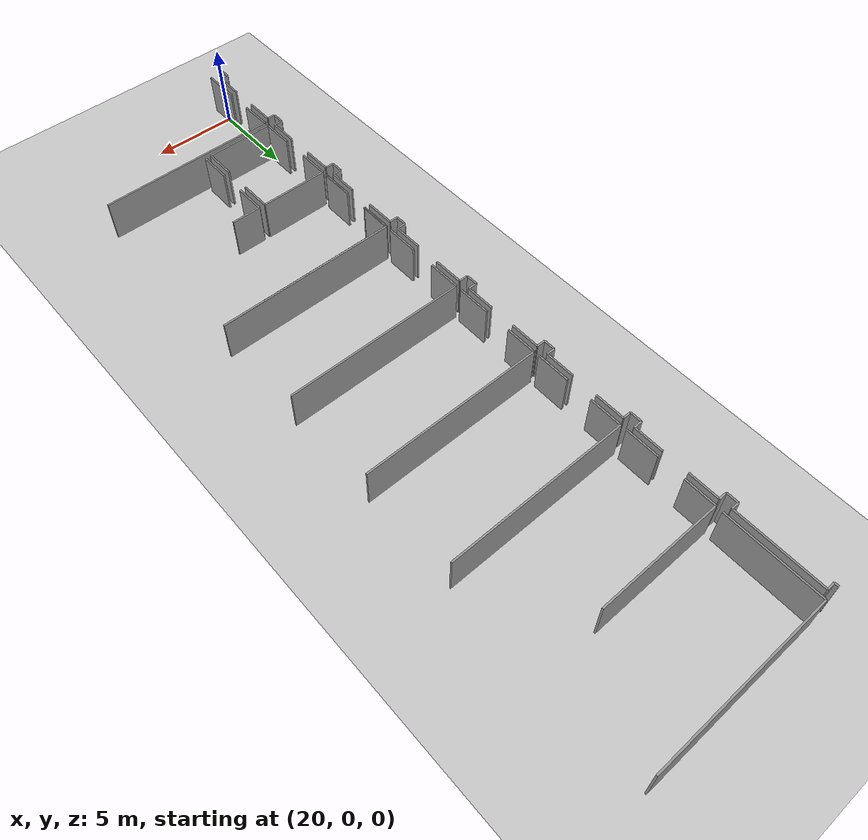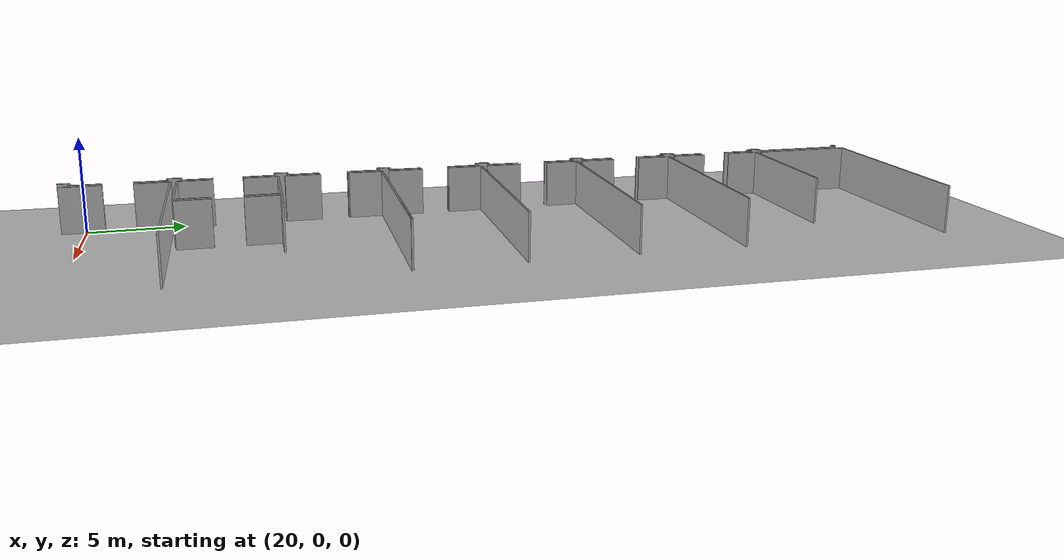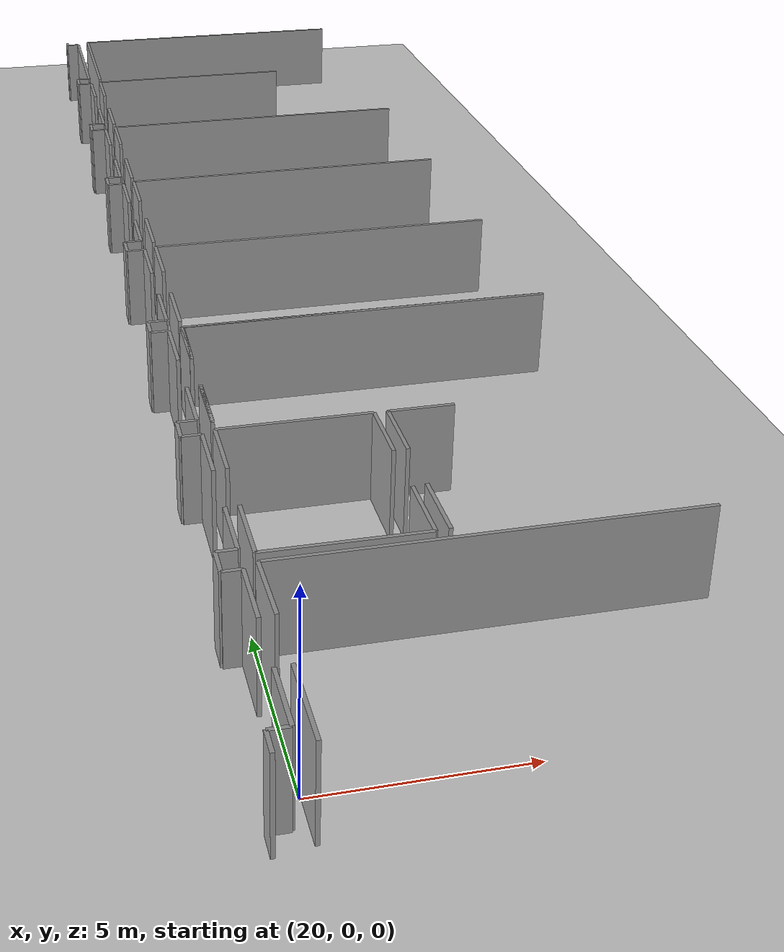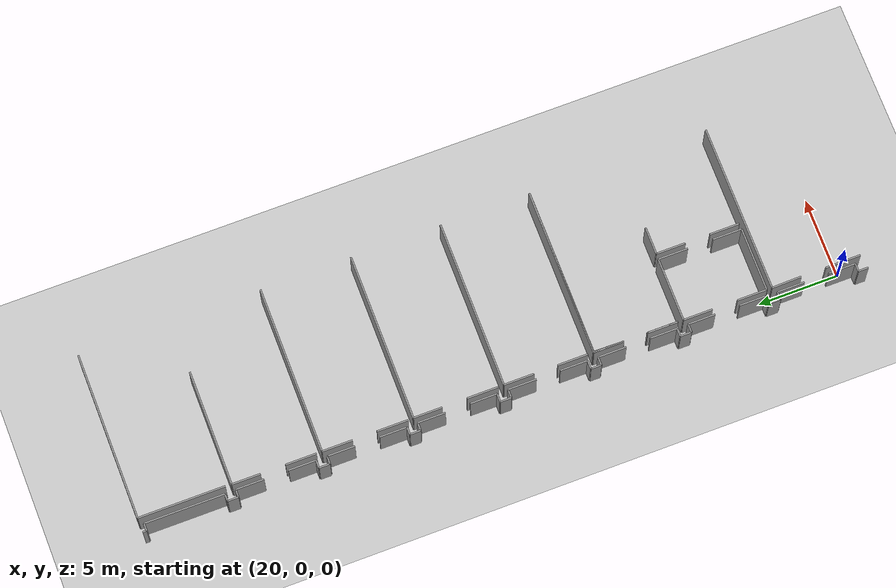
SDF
<sdf version="1.6">
 <world name="default">
  <model name="ground_plane">
   <static>1</static>
   <link name="link">
    <collision name="collision">
     <geometry><plane><normal>0 0 1</normal><size>100 100</size></plane></geometry>
     <surface><friction><ode><mu>100</mu><mu2>50</mu2></ode></friction></surface>
    </collision>
    <visual name="visual">
     <cast_shadows>0</cast_shadows>
     <geometry><plane><normal>0 0 1</normal><size>100 100</size></plane></geometry>
     <material>
      <script><uri>file://media/materials/scripts/gazebo.material</uri><name>Gazebo/Grey</name></script>
     </material>
    </visual>
   </link>
  </model>
  <model name="50015847">
   <static>1</static>
   <link name="Wall_366">
    <collision name="Wall_366_Collision">
     <geometry><box><size>0.239233233335 0.1 2.5</size></box></geometry>
     <pose>0.119616616668 0 1.25 0 0 0</pose>
    </collision>
    <visual name="Wall_366_Visual">
     <pose>0.119616616668 0 1.25 0 0 0</pose>
     <geometry><box><size>0.239233233335 0.1 2.5</size></box></geometry>
     <material>
      <script><uri>file://media/materials/scripts/gazebo.material</uri><name>Gazebo/Grey</name></script>
      <ambient>1 1 1 1</ambient>
     </material>
    </visual>
    <pose>151.54802461 -0.245080591854 0 0 0 -1.57079632679</pose>
   </link>
   <link name="Wall_367">
    <collision name="Wall_367_Collision">
     <geometry><box><size>0.455077032593 0.1 2.5</size></box></geometry>
     <pose>0.227538516296 0 1.25 0 0 0</pose>
    </collision>
    <visual name="Wall_367_Visual">
     <pose>0.227538516296 0 1.25 0 0 0</pose>
     <geometry><box><size>0.455077032593 0.1 2.5</size></box></geometry>
     <material>
      <script><uri>file://media/materials/scripts/gazebo.material</uri><name>Gazebo/Grey</name></script>
      <ambient>1 1 1 1</ambient>
     </material>
    </visual>
    <pose>151.54802461 -0.484313825189 0 0 0 0.0</pose>
   </link>
   <link name="Wall_368">
    <collision name="Wall_368_Collision">
     <geometry><box><size>4.94330604566 0.1 2.5</size></box></geometry>
     <pose>2.47165302283 0 1.25 0 0 0</pose>
    </collision>
    <visual name="Wall_368_Visual">
     <pose>2.47165302283 0 1.25 0 0 0</pose>
     <geometry><box><size>4.94330604566 0.1 2.5</size></box></geometry>
     <material>
      <script><uri>file://media/materials/scripts/gazebo.material</uri><name>Gazebo/Grey</name></script>
      <ambient>1 1 1 1</ambient>
     </material>
    </visual>
    <pose>152.003101642 -0.484313825189 0 0 0 -1.57079632679</pose>
   </link>
   <link name="Wall_369">
    <collision name="Wall_369_Collision">
     <geometry><box><size>0.447958509178 0.1 2.5</size></box></geometry>
     <pose>0.223979254589 0 1.25 0 0 0</pose>
    </collision>
    <visual name="Wall_369_Visual">
     <pose>0.223979254589 0 1.25 0 0 0</pose>
     <geometry><box><size>0.447958509178 0.1 2.5</size></box></geometry>
     <material>
      <script><uri>file://media/materials/scripts/gazebo.material</uri><name>Gazebo/Grey</name></script>
      <ambient>1 1 1 1</ambient>
     </material>
    </visual>
    <pose>152.003101642 -5.42761987085 0 0 0 3.14159265359</pose>
   </link>
   <link name="Wall_370">
    <collision name="Wall_370_Collision">
     <geometry><box><size>0.664819240352 0.1 2.5</size></box></geometry>
     <pose>0.332409620176 0 1.25 0 0 0</pose>
    </collision>
    <visual name="Wall_370_Visual">
     <pose>0.332409620176 0 1.25 0 0 0</pose>
     <geometry><box><size>0.664819240352 0.1 2.5</size></box></geometry>
     <material>
      <script><uri>file://media/materials/scripts/gazebo.material</uri><name>Gazebo/Grey</name></script>
      <ambient>1 1 1 1</ambient>
     </material>
    </visual>
    <pose>151.555143133 -5.42761987085 0 0 0 -1.57079632679</pose>
   </link>
   <link name="Wall_371">
    <collision name="Wall_371_Collision">
     <geometry><box><size>0.476941068795 0.1 2.5</size></box></geometry>
     <pose>0.238470534398 0 1.25 0 0 0</pose>
    </collision>
    <visual name="Wall_371_Visual">
     <pose>0.238470534398 0 1.25 0 0 0</pose>
     <geometry><box><size>0.476941068795 0.1 2.5</size></box></geometry>
     <material>
      <script><uri>file://media/materials/scripts/gazebo.material</uri><name>Gazebo/Grey</name></script>
      <ambient>1 1 1 1</ambient>
     </material>
    </visual>
    <pose>151.555143133 -6.0924391112 0 0 0 0.0</pose>
   </link>
   <link name="Wall_372">
    <collision name="Wall_372_Collision">
     <geometry><box><size>1.73742817918 0.1 2.5</size></box></geometry>
     <pose>0.868714089592 0 1.25 0 0 0</pose>
    </collision>
    <visual name="Wall_372_Visual">
     <pose>0.868714089592 0 1.25 0 0 0</pose>
     <geometry><box><size>1.73742817918 0.1 2.5</size></box></geometry>
     <material>
      <script><uri>file://media/materials/scripts/gazebo.material</uri><name>Gazebo/Grey</name></script>
      <ambient>1 1 1 1</ambient>
     </material>
    </visual>
    <pose>152.032084202 -6.0924391112 0 0 0 -1.57079632679</pose>
   </link>
   <link name="Wall_373">
    <collision name="Wall_373_Collision">
     <geometry><box><size>1.6995474653 0.1 2.5</size></box></geometry>
     <pose>0.849773732649 0 1.25 0 0 0</pose>
    </collision>
    <visual name="Wall_373_Visual">
     <pose>0.849773732649 0 1.25 0 0 0</pose>
     <geometry><box><size>1.6995474653 0.1 2.5</size></box></geometry>
     <material>
      <script><uri>file://media/materials/scripts/gazebo.material</uri><name>Gazebo/Grey</name></script>
      <ambient>1 1 1 1</ambient>
     </material>
    </visual>
    <pose>152.032084202 -9.3272995373 0 0 0 -1.57079632679</pose>
   </link>
   <link name="Wall_374">
    <collision name="Wall_374_Collision">
     <geometry><box><size>0.485076524127 0.1 2.5</size></box></geometry>
     <pose>0.242538262063 0 1.25 0 0 0</pose>
    </collision>
    <visual name="Wall_374_Visual">
     <pose>0.242538262063 0 1.25 0 0 0</pose>
     <geometry><box><size>0.485076524127 0.1 2.5</size></box></geometry>
     <material>
      <script><uri>file://media/materials/scripts/gazebo.material</uri><name>Gazebo/Grey</name></script>
      <ambient>1 1 1 1</ambient>
     </material>
    </visual>
    <pose>152.032084202 -11.0268470026 0 0 0 3.14159265359</pose>
   </link>
   <link name="Wall_375">
    <collision name="Wall_375_Collision">
     <geometry><box><size>0.677530889307 0.1 2.5</size></box></geometry>
     <pose>0.338765444653 0 1.25 0 0 0</pose>
    </collision>
    <visual name="Wall_375_Visual">
     <pose>0.338765444653 0 1.25 0 0 0</pose>
     <geometry><box><size>0.677530889307 0.1 2.5</size></box></geometry>
     <material>
      <script><uri>file://media/materials/scripts/gazebo.material</uri><name>Gazebo/Grey</name></script>
      <ambient>1 1 1 1</ambient>
     </material>
    </visual>
    <pose>151.547007678 -11.0268470026 0 0 0 -1.57079632679</pose>
   </link>
   <link name="Wall_376">
    <collision name="Wall_376_Collision">
     <geometry><box><size>0.486347689022 0.1 2.5</size></box></geometry>
     <pose>0.243173844511 0 1.25 0 0 0</pose>
    </collision>
    <visual name="Wall_376_Visual">
     <pose>0.243173844511 0 1.25 0 0 0</pose>
     <geometry><box><size>0.486347689022 0.1 2.5</size></box></geometry>
     <material>
      <script><uri>file://media/materials/scripts/gazebo.material</uri><name>Gazebo/Grey</name></script>
      <ambient>1 1 1 1</ambient>
     </material>
    </visual>
    <pose>151.547007678 -11.7043778919 0 0 0 0.0</pose>
   </link>
   <link name="Wall_377">
    <collision name="Wall_377_Collision">
     <geometry><box><size>1.71225911425 0.1 2.5</size></box></geometry>
     <pose>0.856129557126 0 1.25 0 0 0</pose>
    </collision>
    <visual name="Wall_377_Visual">
     <pose>0.856129557126 0 1.25 0 0 0</pose>
     <geometry><box><size>1.71225911425 0.1 2.5</size></box></geometry>
     <material>
      <script><uri>file://media/materials/scripts/gazebo.material</uri><name>Gazebo/Grey</name></script>
      <ambient>1 1 1 1</ambient>
     </material>
    </visual>
    <pose>152.033355367 -11.7043778919 0 0 0 -1.57079632679</pose>
   </link>
   <link name="Wall_378">
    <collision name="Wall_378_Collision">
     <geometry><box><size>1.70031016423 0.1 2.5</size></box></geometry>
     <pose>0.850155082117 0 1.25 0 0 0</pose>
    </collision>
    <visual name="Wall_378_Visual">
     <pose>0.850155082117 0 1.25 0 0 0</pose>
     <geometry><box><size>1.70031016423 0.1 2.5</size></box></geometry>
     <material>
      <script><uri>file://media/materials/scripts/gazebo.material</uri><name>Gazebo/Grey</name></script>
      <ambient>1 1 1 1</ambient>
     </material>
    </visual>
    <pose>152.033355367 -14.9361875222 0 0 0 -1.57079632679</pose>
   </link>
   <link name="Wall_379">
    <collision name="Wall_379_Collision">
     <geometry><box><size>0.471347943255 0.1 2.5</size></box></geometry>
     <pose>0.235673971628 0 1.25 0 0 0</pose>
    </collision>
    <visual name="Wall_379_Visual">
     <pose>0.235673971628 0 1.25 0 0 0</pose>
     <geometry><box><size>0.471347943255 0.1 2.5</size></box></geometry>
     <material>
      <script><uri>file://media/materials/scripts/gazebo.material</uri><name>Gazebo/Grey</name></script>
      <ambient>1 1 1 1</ambient>
     </material>
    </visual>
    <pose>152.033355367 -16.6364976865 0 0 0 3.14159265359</pose>
   </link>
   <link name="Wall_380">
    <collision name="Wall_380_Collision">
     <geometry><box><size>0.664819240352 0.1 2.5</size></box></geometry>
     <pose>0.332409620176 0 1.25 0 0 0</pose>
    </collision>
    <visual name="Wall_380_Visual">
     <pose>0.332409620176 0 1.25 0 0 0</pose>
     <geometry><box><size>0.664819240352 0.1 2.5</size></box></geometry>
     <material>
      <script><uri>file://media/materials/scripts/gazebo.material</uri><name>Gazebo/Grey</name></script>
      <ambient>1 1 1 1</ambient>
     </material>
    </visual>
    <pose>151.562007424 -16.6364976865 0 0 0 -1.57079632679</pose>
   </link>
   <link name="Wall_381">
    <collision name="Wall_381_Collision">
     <geometry><box><size>0.498550872019 0.1 2.5</size></box></geometry>
     <pose>0.24927543601 0 1.25 0 0 0</pose>
    </collision>
    <visual name="Wall_381_Visual">
     <pose>0.24927543601 0 1.25 0 0 0</pose>
     <geometry><box><size>0.498550872019 0.1 2.5</size></box></geometry>
     <material>
      <script><uri>file://media/materials/scripts/gazebo.material</uri><name>Gazebo/Grey</name></script>
      <ambient>1 1 1 1</ambient>
     </material>
    </visual>
    <pose>151.562007424 -17.3013169268 0 0 0 0.0</pose>
   </link>
   <link name="Wall_382">
    <collision name="Wall_382_Collision">
     <geometry><box><size>1.71454721106 0.1 2.5</size></box></geometry>
     <pose>0.857273605532 0 1.25 0 0 0</pose>
    </collision>
    <visual name="Wall_382_Visual">
     <pose>0.857273605532 0 1.25 0 0 0</pose>
     <geometry><box><size>1.71454721106 0.1 2.5</size></box></geometry>
     <material>
      <script><uri>file://media/materials/scripts/gazebo.material</uri><name>Gazebo/Grey</name></script>
      <ambient>1 1 1 1</ambient>
     </material>
    </visual>
    <pose>152.060558296 -17.3013169268 0 0 0 -1.57079632679</pose>
   </link>
   <link name="Wall_383">
    <collision name="Wall_383_Collision">
     <geometry><box><size>1.66598871206 0.1 2.5</size></box></geometry>
     <pose>0.832994356028 0 1.25 0 0 0</pose>
    </collision>
    <visual name="Wall_383_Visual">
     <pose>0.832994356028 0 1.25 0 0 0</pose>
     <geometry><box><size>1.66598871206 0.1 2.5</size></box></geometry>
     <material>
      <script><uri>file://media/materials/scripts/gazebo.material</uri><name>Gazebo/Grey</name></script>
      <ambient>1 1 1 1</ambient>
     </material>
    </visual>
    <pose>152.060558296 -20.5577871561 0 0 0 -1.57079632679</pose>
   </link>
   <link name="Wall_384">
    <collision name="Wall_384_Collision">
     <geometry><box><size>0.513550617786 0.1 2.5</size></box></geometry>
     <pose>0.256775308893 0 1.25 0 0 0</pose>
    </collision>
    <visual name="Wall_384_Visual">
     <pose>0.256775308893 0 1.25 0 0 0</pose>
     <geometry><box><size>0.513550617786 0.1 2.5</size></box></geometry>
     <material>
      <script><uri>file://media/materials/scripts/gazebo.material</uri><name>Gazebo/Grey</name></script>
      <ambient>1 1 1 1</ambient>
     </material>
    </visual>
    <pose>152.060558296 -22.2237758682 0 0 0 3.14159265359</pose>
   </link>
   <link name="Wall_385">
    <collision name="Wall_385_Collision">
     <geometry><box><size>0.688462907408 0.1 2.5</size></box></geometry>
     <pose>0.344231453704 0 1.25 0 0 0</pose>
    </collision>
    <visual name="Wall_385_Visual">
     <pose>0.344231453704 0 1.25 0 0 0</pose>
     <geometry><box><size>0.688462907408 0.1 2.5</size></box></geometry>
     <material>
      <script><uri>file://media/materials/scripts/gazebo.material</uri><name>Gazebo/Grey</name></script>
      <ambient>1 1 1 1</ambient>
     </material>
    </visual>
    <pose>151.547007678 -22.2237758682 0 0 0 -1.57079632679</pose>
   </link>
   <link name="Wall_386">
    <collision name="Wall_386_Collision">
     <geometry><box><size>0.530075761428 0.1 2.5</size></box></geometry>
     <pose>0.265037880714 0 1.25 0 0 0</pose>
    </collision>
    <visual name="Wall_386_Visual">
     <pose>0.265037880714 0 1.25 0 0 0</pose>
     <geometry><box><size>0.530075761428 0.1 2.5</size></box></geometry>
     <material>
      <script><uri>file://media/materials/scripts/gazebo.material</uri><name>Gazebo/Grey</name></script>
      <ambient>1 1 1 1</ambient>
     </material>
    </visual>
    <pose>151.547007678 -22.9122387756 0 0 0 0.0</pose>
   </link>
   <link name="Wall_387">
    <collision name="Wall_387_Collision">
     <geometry><box><size>1.75319062389 0.1 2.5</size></box></geometry>
     <pose>0.876595311944 0 1.25 0 0 0</pose>
    </collision>
    <visual name="Wall_387_Visual">
     <pose>0.876595311944 0 1.25 0 0 0</pose>
     <geometry><box><size>1.75319062389 0.1 2.5</size></box></geometry>
     <material>
      <script><uri>file://media/materials/scripts/gazebo.material</uri><name>Gazebo/Grey</name></script>
      <ambient>1 1 1 1</ambient>
     </material>
    </visual>
    <pose>152.077083439 -22.9122387756 0 0 0 -1.57079632679</pose>
   </link>
   <link name="Wall_388">
    <collision name="Wall_388_Collision">
     <geometry><box><size>1.71708954086 0.1 2.5</size></box></geometry>
     <pose>0.858544770428 0 1.25 0 0 0</pose>
    </collision>
    <visual name="Wall_388_Visual">
     <pose>0.858544770428 0 1.25 0 0 0</pose>
     <geometry><box><size>1.71708954086 0.1 2.5</size></box></geometry>
     <material>
      <script><uri>file://media/materials/scripts/gazebo.material</uri><name>Gazebo/Grey</name></script>
      <ambient>1 1 1 1</ambient>
     </material>
    </visual>
    <pose>152.077083439 -26.1470992017 0 0 0 -1.57079632679</pose>
   </link>
   <link name="Wall_389">
    <collision name="Wall_389_Collision">
     <geometry><box><size>0.530075761428 0.1 2.5</size></box></geometry>
     <pose>0.265037880714 0 1.25 0 0 0</pose>
    </collision>
    <visual name="Wall_389_Visual">
     <pose>0.265037880714 0 1.25 0 0 0</pose>
     <geometry><box><size>0.530075761428 0.1 2.5</size></box></geometry>
     <material>
      <script><uri>file://media/materials/scripts/gazebo.material</uri><name>Gazebo/Grey</name></script>
      <ambient>1 1 1 1</ambient>
     </material>
    </visual>
    <pose>152.077083439 -27.8641887426 0 0 0 3.14159265359</pose>
   </link>
   <link name="Wall_390">
    <collision name="Wall_390_Collision">
     <geometry><box><size>0.647277164794 0.1 2.5</size></box></geometry>
     <pose>0.323638582397 0 1.25 0 0 0</pose>
    </collision>
    <visual name="Wall_390_Visual">
     <pose>0.323638582397 0 1.25 0 0 0</pose>
     <geometry><box><size>0.647277164794 0.1 2.5</size></box></geometry>
     <material>
      <script><uri>file://media/materials/scripts/gazebo.material</uri><name>Gazebo/Grey</name></script>
      <ambient>1 1 1 1</ambient>
     </material>
    </visual>
    <pose>151.547007678 -27.8641887426 0 0 0 -1.57079632679</pose>
   </link>
   <link name="Wall_391">
    <collision name="Wall_391_Collision">
     <geometry><box><size>0.502618599685 0.1 2.5</size></box></geometry>
     <pose>0.251309299842 0 1.25 0 0 0</pose>
    </collision>
    <visual name="Wall_391_Visual">
     <pose>0.251309299842 0 1.25 0 0 0</pose>
     <geometry><box><size>0.502618599685 0.1 2.5</size></box></geometry>
     <material>
      <script><uri>file://media/materials/scripts/gazebo.material</uri><name>Gazebo/Grey</name></script>
      <ambient>1 1 1 1</ambient>
     </material>
    </visual>
    <pose>151.547007678 -28.5114659074 0 0 0 0.0</pose>
   </link>
   <link name="Wall_392">
    <collision name="Wall_392_Collision">
     <geometry><box><size>1.74505516856 0.1 2.5</size></box></geometry>
     <pose>0.872527584278 0 1.25 0 0 0</pose>
    </collision>
    <visual name="Wall_392_Visual">
     <pose>0.872527584278 0 1.25 0 0 0</pose>
     <geometry><box><size>1.74505516856 0.1 2.5</size></box></geometry>
     <material>
      <script><uri>file://media/materials/scripts/gazebo.material</uri><name>Gazebo/Grey</name></script>
      <ambient>1 1 1 1</ambient>
     </material>
    </visual>
    <pose>152.049626278 -28.5114659074 0 0 0 -1.57079632679</pose>
   </link>
   <link name="Wall_393">
    <collision name="Wall_393_Collision">
     <geometry><box><size>1.69471703869 0.1 2.5</size></box></geometry>
     <pose>0.847358519347 0 1.25 0 0 0</pose>
    </collision>
    <visual name="Wall_393_Visual">
     <pose>0.847358519347 0 1.25 0 0 0</pose>
     <geometry><box><size>1.69471703869 0.1 2.5</size></box></geometry>
     <material>
      <script><uri>file://media/materials/scripts/gazebo.material</uri><name>Gazebo/Grey</name></script>
      <ambient>1 1 1 1</ambient>
     </material>
    </visual>
    <pose>152.049626278 -31.7623430111 0 0 0 -1.57079632679</pose>
   </link>
   <link name="Wall_394">
    <collision name="Wall_394_Collision">
     <geometry><box><size>0.502618599685 0.1 2.5</size></box></geometry>
     <pose>0.251309299842 0 1.25 0 0 0</pose>
    </collision>
    <visual name="Wall_394_Visual">
     <pose>0.251309299842 0 1.25 0 0 0</pose>
     <geometry><box><size>0.502618599685 0.1 2.5</size></box></geometry>
     <material>
      <script><uri>file://media/materials/scripts/gazebo.material</uri><name>Gazebo/Grey</name></script>
      <ambient>1 1 1 1</ambient>
     </material>
    </visual>
    <pose>152.049626278 -33.4570600498 0 0 0 3.14159265359</pose>
   </link>
   <link name="Wall_395">
    <collision name="Wall_395_Collision">
     <geometry><box><size>0.697615294656 0.1 2.5</size></box></geometry>
     <pose>0.348807647328 0 1.25 0 0 0</pose>
    </collision>
    <visual name="Wall_395_Visual">
     <pose>0.348807647328 0 1.25 0 0 0</pose>
     <geometry><box><size>0.697615294656 0.1 2.5</size></box></geometry>
     <material>
      <script><uri>file://media/materials/scripts/gazebo.material</uri><name>Gazebo/Grey</name></script>
      <ambient>1 1 1 1</ambient>
     </material>
    </visual>
    <pose>151.547007678 -33.4570600498 0 0 0 -1.57079632679</pose>
   </link>
   <link name="Wall_396">
    <collision name="Wall_396_Collision">
     <geometry><box><size>0.51533024864 0.1 2.5</size></box></geometry>
     <pose>0.25766512432 0 1.25 0 0 0</pose>
    </collision>
    <visual name="Wall_396_Visual">
     <pose>0.25766512432 0 1.25 0 0 0</pose>
     <geometry><box><size>0.51533024864 0.1 2.5</size></box></geometry>
     <material>
      <script><uri>file://media/materials/scripts/gazebo.material</uri><name>Gazebo/Grey</name></script>
      <ambient>1 1 1 1</ambient>
     </material>
    </visual>
    <pose>151.547007678 -34.1546753445 0 0 0 0.0</pose>
   </link>
   <link name="Wall_397">
    <collision name="Wall_397_Collision">
     <geometry><box><size>1.68353078761 0.1 2.5</size></box></geometry>
     <pose>0.841765393807 0 1.25 0 0 0</pose>
    </collision>
    <visual name="Wall_397_Visual">
     <pose>0.841765393807 0 1.25 0 0 0</pose>
     <geometry><box><size>1.68353078761 0.1 2.5</size></box></geometry>
     <material>
      <script><uri>file://media/materials/scripts/gazebo.material</uri><name>Gazebo/Grey</name></script>
      <ambient>1 1 1 1</ambient>
     </material>
    </visual>
    <pose>152.062337926 -34.1546753445 0 0 0 -1.57079632679</pose>
   </link>
   <link name="Wall_398">
    <collision name="Wall_398_Collision">
     <geometry><box><size>1.64641277266 0.1 2.5</size></box></geometry>
     <pose>0.823206386332 0 1.25 0 0 0</pose>
    </collision>
    <visual name="Wall_398_Visual">
     <pose>0.823206386332 0 1.25 0 0 0</pose>
     <geometry><box><size>1.64641277266 0.1 2.5</size></box></geometry>
     <material>
      <script><uri>file://media/materials/scripts/gazebo.material</uri><name>Gazebo/Grey</name></script>
      <ambient>1 1 1 1</ambient>
     </material>
    </visual>
    <pose>152.062337926 -37.3910611685 0 0 0 -1.57079632679</pose>
   </link>
   <link name="Wall_399">
    <collision name="Wall_399_Collision">
     <geometry><box><size>0.496517008186 0.1 2.5</size></box></geometry>
     <pose>0.248258504093 0 1.25 0 0 0</pose>
    </collision>
    <visual name="Wall_399_Visual">
     <pose>0.248258504093 0 1.25 0 0 0</pose>
     <geometry><box><size>0.496517008186 0.1 2.5</size></box></geometry>
     <material>
      <script><uri>file://media/materials/scripts/gazebo.material</uri><name>Gazebo/Grey</name></script>
      <ambient>1 1 1 1</ambient>
     </material>
    </visual>
    <pose>152.062337926 -39.0374739411 0 0 0 3.14159265359</pose>
   </link>
   <link name="Wall_400">
    <collision name="Wall_400_Collision">
     <geometry><box><size>0.729140184065 0.1 2.5</size></box></geometry>
     <pose>0.364570092032 0 1.25 0 0 0</pose>
    </collision>
    <visual name="Wall_400_Visual">
     <pose>0.364570092032 0 1.25 0 0 0</pose>
     <geometry><box><size>0.729140184065 0.1 2.5</size></box></geometry>
     <material>
      <script><uri>file://media/materials/scripts/gazebo.material</uri><name>Gazebo/Grey</name></script>
      <ambient>1 1 1 1</ambient>
     </material>
    </visual>
    <pose>151.565820918 -39.0374739411 0 0 0 -1.57079632679</pose>
   </link>
   <link name="Wall_401">
    <collision name="Wall_401_Collision">
     <geometry><box><size>0.477703767733 0.1 2.5</size></box></geometry>
     <pose>0.238851883866 0 1.25 0 0 0</pose>
    </collision>
    <visual name="Wall_401_Visual">
     <pose>0.238851883866 0 1.25 0 0 0</pose>
     <geometry><box><size>0.477703767733 0.1 2.5</size></box></geometry>
     <material>
      <script><uri>file://media/materials/scripts/gazebo.material</uri><name>Gazebo/Grey</name></script>
      <ambient>1 1 1 1</ambient>
     </material>
    </visual>
    <pose>151.565820918 -39.7666141252 0 0 0 0.0</pose>
   </link>
   <link name="Wall_402">
    <collision name="Wall_402_Collision">
     <geometry><box><size>1.69039507805 0.1 2.5</size></box></geometry>
     <pose>0.845197539025 0 1.25 0 0 0</pose>
    </collision>
    <visual name="Wall_402_Visual">
     <pose>0.845197539025 0 1.25 0 0 0</pose>
     <geometry><box><size>1.69039507805 0.1 2.5</size></box></geometry>
     <material>
      <script><uri>file://media/materials/scripts/gazebo.material</uri><name>Gazebo/Grey</name></script>
      <ambient>1 1 1 1</ambient>
     </material>
    </visual>
    <pose>152.043524686 -39.7666141252 0 0 0 -1.57079632679</pose>
   </link>
   <link name="Wall_403">
    <collision name="Wall_403_Collision">
     <geometry><box><size>1.67793766207 0.1 2.5</size></box></geometry>
     <pose>0.838968831037 0 1.25 0 0 0</pose>
    </collision>
    <visual name="Wall_403_Visual">
     <pose>0.838968831037 0 1.25 0 0 0</pose>
     <geometry><box><size>1.67793766207 0.1 2.5</size></box></geometry>
     <material>
      <script><uri>file://media/materials/scripts/gazebo.material</uri><name>Gazebo/Grey</name></script>
      <ambient>1 1 1 1</ambient>
     </material>
    </visual>
    <pose>152.043524686 -43.0091015407 0 0 0 -1.57079632679</pose>
   </link>
   <link name="Wall_404">
    <collision name="Wall_404_Collision">
     <geometry><box><size>0.490161183709 0.1 2.5</size></box></geometry>
     <pose>0.245080591854 0 1.25 0 0 0</pose>
    </collision>
    <visual name="Wall_404_Visual">
     <pose>0.245080591854 0 1.25 0 0 0</pose>
     <geometry><box><size>0.490161183709 0.1 2.5</size></box></geometry>
     <material>
      <script><uri>file://media/materials/scripts/gazebo.material</uri><name>Gazebo/Grey</name></script>
      <ambient>1 1 1 1</ambient>
     </material>
    </visual>
    <pose>152.043524686 -44.6870392027 0 0 0 3.14159265359</pose>
   </link>
   <link name="Wall_405">
    <collision name="Wall_405_Collision">
     <geometry><box><size>0.616006508364 0.1 2.5</size></box></geometry>
     <pose>0.308003254182 0 1.25 0 0 0</pose>
    </collision>
    <visual name="Wall_405_Visual">
     <pose>0.308003254182 0 1.25 0 0 0</pose>
     <geometry><box><size>0.616006508364 0.1 2.5</size></box></geometry>
     <material>
      <script><uri>file://media/materials/scripts/gazebo.material</uri><name>Gazebo/Grey</name></script>
      <ambient>1 1 1 1</ambient>
     </material>
    </visual>
    <pose>151.553363502 -44.6870392027 0 0 0 -1.57079632679</pose>
   </link>
   <link name="Wall_470">
    <collision name="Wall_470_Collision">
     <geometry><box><size>5.35414653989 0.1 2.5</size></box></geometry>
     <pose>2.67707326994 0 1.25 0 0 0</pose>
    </collision>
    <visual name="Wall_470_Visual">
     <pose>2.67707326994 0 1.25 0 0 0</pose>
     <geometry><box><size>5.35414653989 0.1 2.5</size></box></geometry>
     <material>
      <script><uri>file://media/materials/scripts/gazebo.material</uri><name>Gazebo/Grey</name></script>
      <ambient>1 1 1 1</ambient>
     </material>
    </visual>
    <pose>152.43300961 -5.59897289876 0 0 0 1.57079632679</pose>
   </link>
   <link name="Wall_471">
    <collision name="Wall_471_Collision">
     <geometry><box><size>10.4443992475 0.1 2.5</size></box></geometry>
     <pose>5.22219962374 0 1.25 0 0 0</pose>
    </collision>
    <visual name="Wall_471_Visual">
     <pose>5.22219962374 0 1.25 0 0 0</pose>
     <geometry><box><size>10.4443992475 0.1 2.5</size></box></geometry>
     <material>
      <script><uri>file://media/materials/scripts/gazebo.material</uri><name>Gazebo/Grey</name></script>
      <ambient>1 1 1 1</ambient>
     </material>
    </visual>
    <pose>152.43300961 -0.244826358875 0 0 0 0.0</pose>
   </link>
   <link name="Wall_479">
    <collision name="Wall_479_Collision">
     <geometry><box><size>7.17750546601 0.1 2.5</size></box></geometry>
     <pose>3.588752733 0 1.25 0 0 0</pose>
    </collision>
    <visual name="Wall_479_Visual">
     <pose>3.588752733 0 1.25 0 0 0</pose>
     <geometry><box><size>7.17750546601 0.1 2.5</size></box></geometry>
     <material>
      <script><uri>file://media/materials/scripts/gazebo.material</uri><name>Gazebo/Grey</name></script>
      <ambient>1 1 1 1</ambient>
     </material>
    </visual>
    <pose>152.436823105 -5.9793054355 0 0 0 0.0</pose>
   </link>
   <link name="Wall_487">
    <collision name="Wall_487_Collision">
     <geometry><box><size>1.90293384858 0.1 2.5</size></box></geometry>
     <pose>0.951466924289 0 1.25 0 0 0</pose>
    </collision>
    <visual name="Wall_487_Visual">
     <pose>0.951466924289 0 1.25 0 0 0</pose>
     <geometry><box><size>1.90293384858 0.1 2.5</size></box></geometry>
     <material>
      <script><uri>file://media/materials/scripts/gazebo.material</uri><name>Gazebo/Grey</name></script>
      <ambient>1 1 1 1</ambient>
     </material>
    </visual>
    <pose>152.400722022 -11.179641023 0 0 0 1.57079632679</pose>
   </link>
   <link name="Wall_488">
    <collision name="Wall_488_Collision">
     <geometry><box><size>1.76183454518 0.1 2.5</size></box></geometry>
     <pose>0.880917272589 0 1.25 0 0 0</pose>
    </collision>
    <visual name="Wall_488_Visual">
     <pose>0.880917272589 0 1.25 0 0 0</pose>
     <geometry><box><size>1.76183454518 0.1 2.5</size></box></geometry>
     <material>
      <script><uri>file://media/materials/scripts/gazebo.material</uri><name>Gazebo/Grey</name></script>
      <ambient>1 1 1 1</ambient>
     </material>
    </visual>
    <pose>152.400722022 -7.74368231047 0 0 0 1.57079632679</pose>
   </link>
   <link name="Wall_489">
    <collision name="Wall_489_Collision">
     <geometry><box><size>0.0361904909733 0.1 2.5</size></box></geometry>
     <pose>0.0180952454866 0 1.25 0 0 0</pose>
    </collision>
    <visual name="Wall_489_Visual">
     <pose>0.0180952454866 0 1.25 0 0 0</pose>
     <geometry><box><size>0.0361904909733 0.1 2.5</size></box></geometry>
     <material>
      <script><uri>file://media/materials/scripts/gazebo.material</uri><name>Gazebo/Grey</name></script>
      <ambient>1 1 1 1</ambient>
     </material>
    </visual>
    <pose>152.400722022 -5.98184776529 0 0 0 0.0703064641186</pose>
   </link>
   <link name="Wall_490">
    <collision name="Wall_490_Collision">
     <geometry><box><size>1.92123862307 0.1 2.5</size></box></geometry>
     <pose>0.960619311537 0 1.25 0 0 0</pose>
    </collision>
    <visual name="Wall_490_Visual">
     <pose>0.960619311537 0 1.25 0 0 0</pose>
     <geometry><box><size>1.92123862307 0.1 2.5</size></box></geometry>
     <material>
      <script><uri>file://media/materials/scripts/gazebo.material</uri><name>Gazebo/Grey</name></script>
      <ambient>1 1 1 1</ambient>
     </material>
    </visual>
    <pose>152.408094778 -16.836833274 0 0 0 1.57079632679</pose>
   </link>
   <link name="Wall_491">
    <collision name="Wall_491_Collision">
     <geometry><box><size>1.873442823 0.1 2.5</size></box></geometry>
     <pose>0.936721411502 0 1.25 0 0 0</pose>
    </collision>
    <visual name="Wall_491_Visual">
     <pose>0.936721411502 0 1.25 0 0 0</pose>
     <geometry><box><size>1.873442823 0.1 2.5</size></box></geometry>
     <material>
      <script><uri>file://media/materials/scripts/gazebo.material</uri><name>Gazebo/Grey</name></script>
      <ambient>1 1 1 1</ambient>
     </material>
    </visual>
    <pose>152.408094778 -13.3960441348 0 0 0 1.57079632679</pose>
   </link>
   <link name="Wall_492">
    <collision name="Wall_492_Collision">
     <geometry><box><size>10.4845680582 0.1 2.5</size></box></geometry>
     <pose>5.24228402908 0 1.25 0 0 0</pose>
    </collision>
    <visual name="Wall_492_Visual">
     <pose>5.24228402908 0 1.25 0 0 0</pose>
     <geometry><box><size>10.4845680582 0.1 2.5</size></box></geometry>
     <material>
      <script><uri>file://media/materials/scripts/gazebo.material</uri><name>Gazebo/Grey</name></script>
      <ambient>1 1 1 1</ambient>
     </material>
    </visual>
    <pose>152.408094778 -11.5226013118 0 0 0 0.0</pose>
   </link>
   <link name="Wall_499">
    <collision name="Wall_499_Collision">
     <geometry><box><size>10.4403315198 0.1 2.5</size></box></geometry>
     <pose>5.2201657599 0 1.25 0 0 0</pose>
    </collision>
    <visual name="Wall_499_Visual">
     <pose>5.2201657599 0 1.25 0 0 0</pose>
     <geometry><box><size>10.4403315198 0.1 2.5</size></box></geometry>
     <material>
      <script><uri>file://media/materials/scripts/gazebo.material</uri><name>Gazebo/Grey</name></script>
      <ambient>1 1 1 1</ambient>
     </material>
    </visual>
    <pose>152.442924696 -17.1683530788 0 0 0 0.0</pose>
   </link>
   <link name="Wall_505">
    <collision name="Wall_505_Collision">
     <geometry><box><size>1.94056032949 0.1 2.5</size></box></geometry>
     <pose>0.970280164743 0 1.25 0 0 0</pose>
    </collision>
    <visual name="Wall_505_Visual">
     <pose>0.970280164743 0 1.25 0 0 0</pose>
     <geometry><box><size>1.94056032949 0.1 2.5</size></box></geometry>
     <material>
      <script><uri>file://media/materials/scripts/gazebo.material</uri><name>Gazebo/Grey</name></script>
      <ambient>1 1 1 1</ambient>
     </material>
    </visual>
    <pose>152.420297961 -22.4373315707 0 0 0 1.57079632679</pose>
   </link>
   <link name="Wall_506">
    <collision name="Wall_506_Collision">
     <geometry><box><size>1.78674937713 0.1 2.5</size></box></geometry>
     <pose>0.893374688565 0 1.25 0 0 0</pose>
    </collision>
    <visual name="Wall_506_Visual">
     <pose>0.893374688565 0 1.25 0 0 0</pose>
     <geometry><box><size>1.78674937713 0.1 2.5</size></box></geometry>
     <material>
      <script><uri>file://media/materials/scripts/gazebo.material</uri><name>Gazebo/Grey</name></script>
      <ambient>1 1 1 1</ambient>
     </material>
    </visual>
    <pose>152.420297961 -18.9551024559 0 0 0 1.57079632679</pose>
   </link>
   <link name="Wall_507">
    <collision name="Wall_507_Collision">
     <geometry><box><size>0.0226267351401 0.1 2.5</size></box></geometry>
     <pose>0.01131336757 0 1.25 0 0 0</pose>
    </collision>
    <visual name="Wall_507_Visual">
     <pose>0.01131336757 0 1.25 0 0 0</pose>
     <geometry><box><size>0.0226267351401 0.1 2.5</size></box></geometry>
     <material>
      <script><uri>file://media/materials/scripts/gazebo.material</uri><name>Gazebo/Grey</name></script>
      <ambient>1 1 1 1</ambient>
     </material>
    </visual>
    <pose>152.420297961 -17.1683530788 0 0 0 0.0</pose>
   </link>
   <link name="Wall_508">
    <collision name="Wall_508_Collision">
     <geometry><box><size>10.4629582549 0.1 2.5</size></box></geometry>
     <pose>5.23147912747 0 1.25 0 0 0</pose>
    </collision>
    <visual name="Wall_508_Visual">
     <pose>5.23147912747 0 1.25 0 0 0</pose>
     <geometry><box><size>10.4629582549 0.1 2.5</size></box></geometry>
     <material>
      <script><uri>file://media/materials/scripts/gazebo.material</uri><name>Gazebo/Grey</name></script>
      <ambient>1 1 1 1</ambient>
     </material>
    </visual>
    <pose>152.427162251 -22.7815630244 0 0 0 0.0</pose>
   </link>
   <link name="Wall_514">
    <collision name="Wall_514_Collision">
     <geometry><box><size>1.88234097727 0.1 2.5</size></box></geometry>
     <pose>0.941170488636 0 1.25 0 0 0</pose>
    </collision>
    <visual name="Wall_514_Visual">
     <pose>0.941170488636 0 1.25 0 0 0</pose>
     <geometry><box><size>1.88234097727 0.1 2.5</size></box></geometry>
     <material>
      <script><uri>file://media/materials/scripts/gazebo.material</uri><name>Gazebo/Grey</name></script>
      <ambient>1 1 1 1</ambient>
     </material>
    </visual>
    <pose>152.427162251 -28.0149488992 0 0 0 1.57079632679</pose>
   </link>
   <link name="Wall_515">
    <collision name="Wall_515_Collision">
     <geometry><box><size>1.87725631769 0.1 2.5</size></box></geometry>
     <pose>0.938628158845 0 1.25 0 0 0</pose>
    </collision>
    <visual name="Wall_515_Visual">
     <pose>0.938628158845 0 1.25 0 0 0</pose>
     <geometry><box><size>1.87725631769 0.1 2.5</size></box></geometry>
     <material>
      <script><uri>file://media/materials/scripts/gazebo.material</uri><name>Gazebo/Grey</name></script>
      <ambient>1 1 1 1</ambient>
     </material>
    </visual>
    <pose>152.427162251 -24.658819342 0 0 0 1.57079632679</pose>
   </link>
   <link name="Wall_516">
    <collision name="Wall_516_Collision">
     <geometry><box><size>10.437534957 0.1 2.5</size></box></geometry>
     <pose>5.21876747852 0 1.25 0 0 0</pose>
    </collision>
    <visual name="Wall_516_Visual">
     <pose>5.21876747852 0 1.25 0 0 0</pose>
     <geometry><box><size>10.437534957 0.1 2.5</size></box></geometry>
     <material>
      <script><uri>file://media/materials/scripts/gazebo.material</uri><name>Gazebo/Grey</name></script>
      <ambient>1 1 1 1</ambient>
     </material>
    </visual>
    <pose>152.441399298 -28.3683327401 0 0 0 0.0</pose>
   </link>
   <link name="Wall_522">
    <collision name="Wall_522_Collision">
     <geometry><box><size>1.91056083795 0.1 2.5</size></box></geometry>
     <pose>0.955280418976 0 1.25 0 0 0</pose>
    </collision>
    <visual name="Wall_522_Visual">
     <pose>0.955280418976 0 1.25 0 0 0</pose>
     <geometry><box><size>1.91056083795 0.1 2.5</size></box></geometry>
     <material>
      <script><uri>file://media/materials/scripts/gazebo.material</uri><name>Gazebo/Grey</name></script>
      <ambient>1 1 1 1</ambient>
     </material>
    </visual>
    <pose>152.410891341 -33.625362282 0 0 0 1.57079632679</pose>
   </link>
   <link name="Wall_523">
    <collision name="Wall_523_Collision">
     <geometry><box><size>1.87420552194 0.1 2.5</size></box></geometry>
     <pose>0.93710276097 0 1.25 0 0 0</pose>
    </collision>
    <visual name="Wall_523_Visual">
     <pose>0.93710276097 0 1.25 0 0 0</pose>
     <geometry><box><size>1.87420552194 0.1 2.5</size></box></geometry>
     <material>
      <script><uri>file://media/materials/scripts/gazebo.material</uri><name>Gazebo/Grey</name></script>
      <ambient>1 1 1 1</ambient>
     </material>
    </visual>
    <pose>152.410891341 -30.2458432908 0 0 0 1.57079632679</pose>
   </link>
   <link name="Wall_524">
    <collision name="Wall_524_Collision">
     <geometry><box><size>0.0306864576848 0.1 2.5</size></box></geometry>
     <pose>0.0153432288424 0 1.25 0 0 0</pose>
    </collision>
    <visual name="Wall_524_Visual">
     <pose>0.0153432288424 0 1.25 0 0 0</pose>
     <geometry><box><size>0.0306864576848 0.1 2.5</size></box></geometry>
     <material>
      <script><uri>file://media/materials/scripts/gazebo.material</uri><name>Gazebo/Grey</name></script>
      <ambient>1 1 1 1</ambient>
     </material>
    </visual>
    <pose>152.410891341 -28.3716377689 0 0 0 0.107912488817</pose>
   </link>
   <link name="Wall_525">
    <collision name="Wall_525_Collision">
     <geometry><box><size>1.90013728581 0.1 2.5</size></box></geometry>
     <pose>0.950068642904 0 1.25 0 0 0</pose>
    </collision>
    <visual name="Wall_525_Visual">
     <pose>0.950068642904 0 1.25 0 0 0</pose>
     <geometry><box><size>1.90013728581 0.1 2.5</size></box></geometry>
     <material>
      <script><uri>file://media/materials/scripts/gazebo.material</uri><name>Gazebo/Grey</name></script>
      <ambient>1 1 1 1</ambient>
     </material>
    </visual>
    <pose>152.407840545 -33.6459551533 0 0 0 1.57079632679</pose>
   </link>
   <link name="Wall_526">
    <collision name="Wall_526_Collision">
     <geometry><box><size>1.87217165811 0.1 2.5</size></box></geometry>
     <pose>0.936085829054 0 1.25 0 0 0</pose>
    </collision>
    <visual name="Wall_526_Visual">
     <pose>0.936085829054 0 1.25 0 0 0</pose>
     <geometry><box><size>1.87217165811 0.1 2.5</size></box></geometry>
     <material>
      <script><uri>file://media/materials/scripts/gazebo.material</uri><name>Gazebo/Grey</name></script>
      <ambient>1 1 1 1</ambient>
     </material>
    </visual>
    <pose>152.407840545 -30.2521991153 0 0 0 1.57079632679</pose>
   </link>
   <link name="Wall_527">
    <collision name="Wall_527_Collision">
     <geometry><box><size>10.4695683124 0.1 2.5</size></box></geometry>
     <pose>5.2347841562 0 1.25 0 0 0</pose>
    </collision>
    <visual name="Wall_527_Visual">
     <pose>5.2347841562 0 1.25 0 0 0</pose>
     <geometry><box><size>10.4695683124 0.1 2.5</size></box></geometry>
     <material>
      <script><uri>file://media/materials/scripts/gazebo.material</uri><name>Gazebo/Grey</name></script>
      <ambient>1 1 1 1</ambient>
     </material>
    </visual>
    <pose>152.407840545 -28.3800274572 0 0 0 0.0</pose>
   </link>
   <link name="Wall_533">
    <collision name="Wall_533_Collision">
     <geometry><box><size>1.83708750699 0.1 2.5</size></box></geometry>
     <pose>0.918543753496 0 1.25 0 0 0</pose>
    </collision>
    <visual name="Wall_533_Visual">
     <pose>0.918543753496 0 1.25 0 0 0</pose>
     <geometry><box><size>1.83708750699 0.1 2.5</size></box></geometry>
     <material>
      <script><uri>file://media/materials/scripts/gazebo.material</uri><name>Gazebo/Grey</name></script>
      <ambient>1 1 1 1</ambient>
     </material>
    </visual>
    <pose>152.409620176 -33.6212945543 0 0 0 1.57079632679</pose>
   </link>
   <link name="Wall_534">
    <collision name="Wall_534_Collision">
     <geometry><box><size>1.89404808173 0.1 2.5</size></box></geometry>
     <pose>0.947024040865 0 1.25 0 0 0</pose>
    </collision>
    <visual name="Wall_534_Visual">
     <pose>0.947024040865 0 1.25 0 0 0</pose>
     <geometry><box><size>1.89404808173 0.1 2.5</size></box></geometry>
     <material>
      <script><uri>file://media/materials/scripts/gazebo.material</uri><name>Gazebo/Grey</name></script>
      <ambient>1 1 1 1</ambient>
     </material>
    </visual>
    <pose>152.409620176 -30.2621142015 0 0 0 1.55401712571</pose>
   </link>
   <link name="Wall_535">
    <collision name="Wall_535_Collision">
     <geometry><box><size>1.85717191234 0.1 2.5</size></box></geometry>
     <pose>0.92858595617 0 1.25 0 0 0</pose>
    </collision>
    <visual name="Wall_535_Visual">
     <pose>0.92858595617 0 1.25 0 0 0</pose>
     <geometry><box><size>1.85717191234 0.1 2.5</size></box></geometry>
     <material>
      <script><uri>file://media/materials/scripts/gazebo.material</uri><name>Gazebo/Grey</name></script>
      <ambient>1 1 1 1</ambient>
     </material>
    </visual>
    <pose>152.399450857 -39.2347587329 0 0 0 1.57079632679</pose>
   </link>
   <link name="Wall_536">
    <collision name="Wall_536_Collision">
     <geometry><box><size>1.8187827325 0.1 2.5</size></box></geometry>
     <pose>0.909391366248 0 1.25 0 0 0</pose>
    </collision>
    <visual name="Wall_536_Visual">
     <pose>0.909391366248 0 1.25 0 0 0</pose>
     <geometry><box><size>1.8187827325 0.1 2.5</size></box></geometry>
     <material>
      <script><uri>file://media/materials/scripts/gazebo.material</uri><name>Gazebo/Grey</name></script>
      <ambient>1 1 1 1</ambient>
     </material>
    </visual>
    <pose>152.399450857 -35.8069354757 0 0 0 1.57079632679</pose>
   </link>
   <link name="Wall_537">
    <collision name="Wall_537_Collision">
     <geometry><box><size>3.99044083999 0.1 2.5</size></box></geometry>
     <pose>1.99522041999 0 1.25 0 0 0</pose>
    </collision>
    <visual name="Wall_537_Visual">
     <pose>1.99522041999 0 1.25 0 0 0</pose>
     <geometry><box><size>3.99044083999 0.1 2.5</size></box></geometry>
     <material>
      <script><uri>file://media/materials/scripts/gazebo.material</uri><name>Gazebo/Grey</name></script>
      <ambient>1 1 1 1</ambient>
     </material>
    </visual>
    <pose>152.399450857 -33.9881527432 0 0 0 0.0</pose>
   </link>
   <link name="Wall_538">
    <collision name="Wall_538_Collision">
     <geometry><box><size>1.85005338893 0.1 2.5</size></box></geometry>
     <pose>0.925026694463 0 1.25 0 0 0</pose>
    </collision>
    <visual name="Wall_538_Visual">
     <pose>0.925026694463 0 1.25 0 0 0</pose>
     <geometry><box><size>1.85005338893 0.1 2.5</size></box></geometry>
     <material>
      <script><uri>file://media/materials/scripts/gazebo.material</uri><name>Gazebo/Grey</name></script>
      <ambient>1 1 1 1</ambient>
     </material>
    </visual>
    <pose>156.389891697 -33.9881527432 0 0 0 -1.57079632679</pose>
   </link>
   <link name="Wall_539">
    <collision name="Wall_539_Collision">
     <geometry><box><size>1.8223419942 0.1 2.5</size></box></geometry>
     <pose>0.911170997102 0 1.25 0 0 0</pose>
    </collision>
    <visual name="Wall_539_Visual">
     <pose>0.911170997102 0 1.25 0 0 0</pose>
     <geometry><box><size>1.8223419942 0.1 2.5</size></box></geometry>
     <material>
      <script><uri>file://media/materials/scripts/gazebo.material</uri><name>Gazebo/Grey</name></script>
      <ambient>1 1 1 1</ambient>
     </material>
    </visual>
    <pose>156.389891697 -37.4281791834 0 0 0 -1.57079632679</pose>
   </link>
   <link name="Wall_540">
    <collision name="Wall_540_Collision">
     <geometry><box><size>3.99047197109 0.1 2.5</size></box></geometry>
     <pose>1.99523598555 0 1.25 0 0 0</pose>
    </collision>
    <visual name="Wall_540_Visual">
     <pose>1.99523598555 0 1.25 0 0 0</pose>
     <geometry><box><size>3.99047197109 0.1 2.5</size></box></geometry>
     <material>
      <script><uri>file://media/materials/scripts/gazebo.material</uri><name>Gazebo/Grey</name></script>
      <ambient>1 1 1 1</ambient>
     </material>
    </visual>
    <pose>156.389891697 -39.2505211776 0 0 0 3.13764262317</pose>
   </link>
   <link name="Wall_541">
    <collision name="Wall_541_Collision">
     <geometry><box><size>1.84725682616 0.1 2.5</size></box></geometry>
     <pose>0.923628413078 0 1.25 0 0 0</pose>
    </collision>
    <visual name="Wall_541_Visual">
     <pose>0.923628413078 0 1.25 0 0 0</pose>
     <geometry><box><size>1.84725682616 0.1 2.5</size></box></geometry>
     <material>
      <script><uri>file://media/materials/scripts/gazebo.material</uri><name>Gazebo/Grey</name></script>
      <ambient>1 1 1 1</ambient>
     </material>
    </visual>
    <pose>156.744038237 -39.2276402095 0 0 0 1.57079632679</pose>
   </link>
   <link name="Wall_542">
    <collision name="Wall_542_Collision">
     <geometry><box><size>1.83200284741 0.1 2.5</size></box></geometry>
     <pose>0.916001423705 0 1.25 0 0 0</pose>
    </collision>
    <visual name="Wall_542_Visual">
     <pose>0.916001423705 0 1.25 0 0 0</pose>
     <geometry><box><size>1.83200284741 0.1 2.5</size></box></geometry>
     <material>
      <script><uri>file://media/materials/scripts/gazebo.material</uri><name>Gazebo/Grey</name></script>
      <ambient>1 1 1 1</ambient>
     </material>
    </visual>
    <pose>156.744038237 -35.8298164438 0 0 0 1.57079632679</pose>
   </link>
   <link name="Wall_543">
    <collision name="Wall_543_Collision">
     <geometry><box><size>1.71607260894 0.1 2.5</size></box></geometry>
     <pose>0.858036304469 0 1.25 0 0 0</pose>
    </collision>
    <visual name="Wall_543_Visual">
     <pose>0.858036304469 0 1.25 0 0 0</pose>
     <geometry><box><size>1.71607260894 0.1 2.5</size></box></geometry>
     <material>
      <script><uri>file://media/materials/scripts/gazebo.material</uri><name>Gazebo/Grey</name></script>
      <ambient>1 1 1 1</ambient>
     </material>
    </visual>
    <pose>156.744038237 -33.9978135964 0 0 0 0.0</pose>
   </link>
   <link name="Wall_556">
    <collision name="Wall_556_Collision">
     <geometry><box><size>10.4901611837 0.1 2.5</size></box></geometry>
     <pose>5.24508059185 0 1.25 0 0 0</pose>
    </collision>
    <visual name="Wall_556_Visual">
     <pose>5.24508059185 0 1.25 0 0 0</pose>
     <geometry><box><size>10.4901611837 0.1 2.5</size></box></geometry>
     <material>
      <script><uri>file://media/materials/scripts/gazebo.material</uri><name>Gazebo/Grey</name></script>
      <ambient>1 1 1 1</ambient>
     </material>
    </visual>
    <pose>152.393095032 -39.5662785377 0 0 0 0.0</pose>
   </link>
   <link name="Wall_563">
    <collision name="Wall_563_Collision">
     <geometry><box><size>2.18818325113 0.1 2.5</size></box></geometry>
     <pose>1.09409162557 0 1.25 0 0 0</pose>
    </collision>
    <visual name="Wall_563_Visual">
     <pose>1.09409162557 0 1.25 0 0 0</pose>
     <geometry><box><size>2.18818325113 0.1 2.5</size></box></geometry>
     <material>
      <script><uri>file://media/materials/scripts/gazebo.material</uri><name>Gazebo/Grey</name></script>
      <ambient>1 1 1 1</ambient>
     </material>
    </visual>
    <pose>152.426653786 -45.1594040779 0 0 0 1.57079632679</pose>
   </link>
   <link name="Wall_564">
    <collision name="Wall_564_Collision">
     <geometry><box><size>1.85366221686 0.1 2.5</size></box></geometry>
     <pose>0.926831108429 0 1.25 0 0 0</pose>
    </collision>
    <visual name="Wall_564_Visual">
     <pose>0.926831108429 0 1.25 0 0 0</pose>
     <geometry><box><size>1.85366221686 0.1 2.5</size></box></geometry>
     <material>
      <script><uri>file://media/materials/scripts/gazebo.material</uri><name>Gazebo/Grey</name></script>
      <ambient>1 1 1 1</ambient>
     </material>
    </visual>
    <pose>152.426653786 -41.4196369553 0 0 0 1.5889013442</pose>
   </link>
   <pose>-132.35 43.9162226064 0 0 0 0</pose>
  </model>
 </world>
</sdf>
